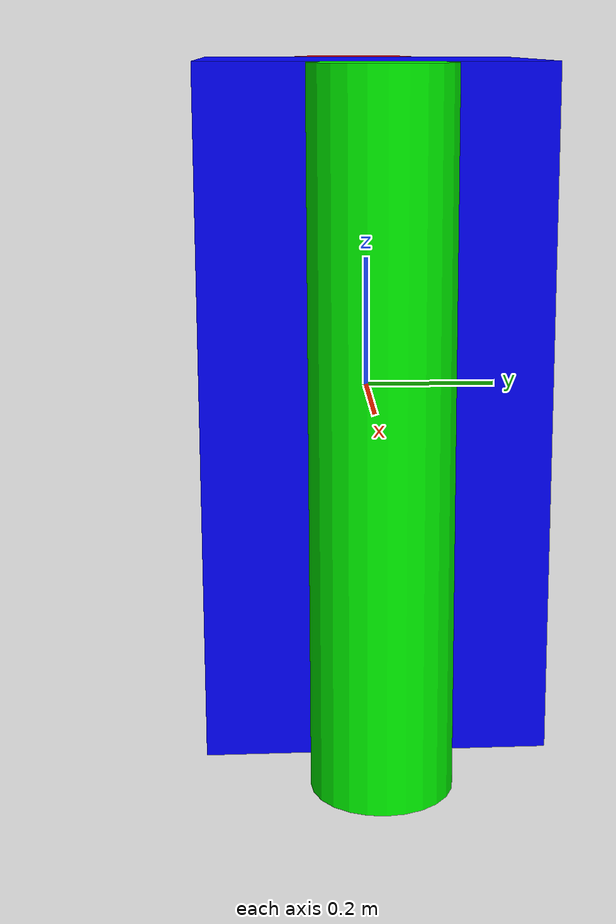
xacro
<?xml version="1.0"?>
<robot xmlns:xacro="http://www.ros.org/wiki/xacro" name="simple_two_armed_robot">

  <!-- Macro Definitions -->
  <xacro:macro name="cylinder_link" params="name length radius origin color">
    <link name="${name}">
      <visual>
        <geometry>
          <cylinder length="${length}" radius="${radius}"/>
        </geometry>
        <origin xyz="${origin}" rpy="0 0 0"/>
        <material name="${color}"/>
      </visual>
    </link>
  </xacro:macro>

  <xacro:macro name="revolute_joint" params="name parent child origin axis lower_limit upper_limit">
    <joint name="${name}" type="revolute">
      <parent link="${parent}"/>
      <child link="${child}"/>
      <origin xyz="${origin}" rpy="0 0 0"/>
      <axis xyz="${axis}"/>
      <limit lower="${lower_limit}" upper="${upper_limit}" effort="100" velocity="0.5"/>
    </joint>
  </xacro:macro>

  <!-- Material Definitions -->
  <material name="blue">
    <color rgba="0 0 1 1"/>
  </material>

  <material name="green">
    <color rgba="0 1 0 1"/>
  </material>

  <material name="red">
    <color rgba="1 0 0 1"/>
  </material>

  <!-- base_link (Torso) Link -->
  <link name="base_link">
    <visual>
      <geometry>
        <box size="0.5 0.5 1"/>
      </geometry>
      <material name="blue"/>
    </visual>
  </link>

  <!-- Left and Right Arm Links -->
  <xacro:cylinder_link name="left_arm" length="1" radius="0.1" origin="0.1 0 -0.5" color="green"/>
  <xacro:cylinder_link name="right_arm" length="1" radius="0.1" origin="-0.1 0 -0.5" color="red"/>

  <!-- Left and Right Shoulder Joints -->
  <xacro:revolute_joint name="left_shoulder" parent="base_link" child="left_arm" origin="0.25 0 0.5" axis="0 1 0" lower_limit="-1.5" upper_limit="1.5"/>
  <xacro:revolute_joint name="right_shoulder" parent="base_link" child="right_arm" origin="-0.25 0 0.5" axis="0 1 0" lower_limit="-1.5" upper_limit="1.5"/>

</robot>
